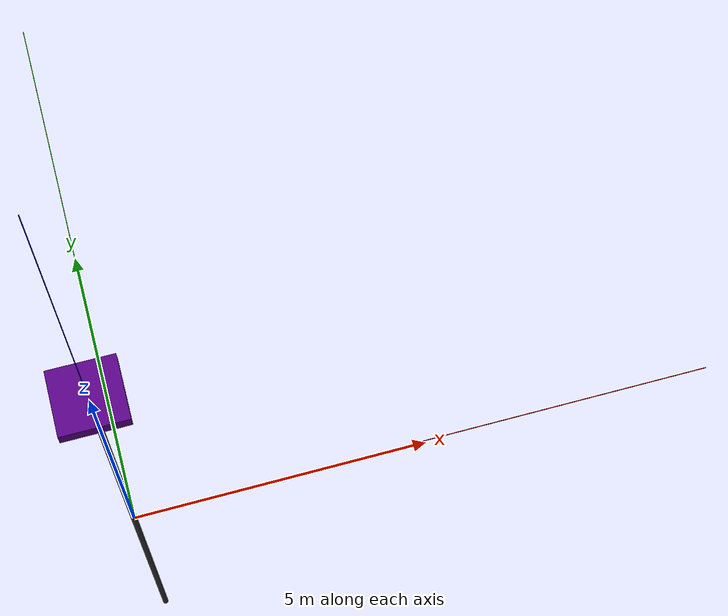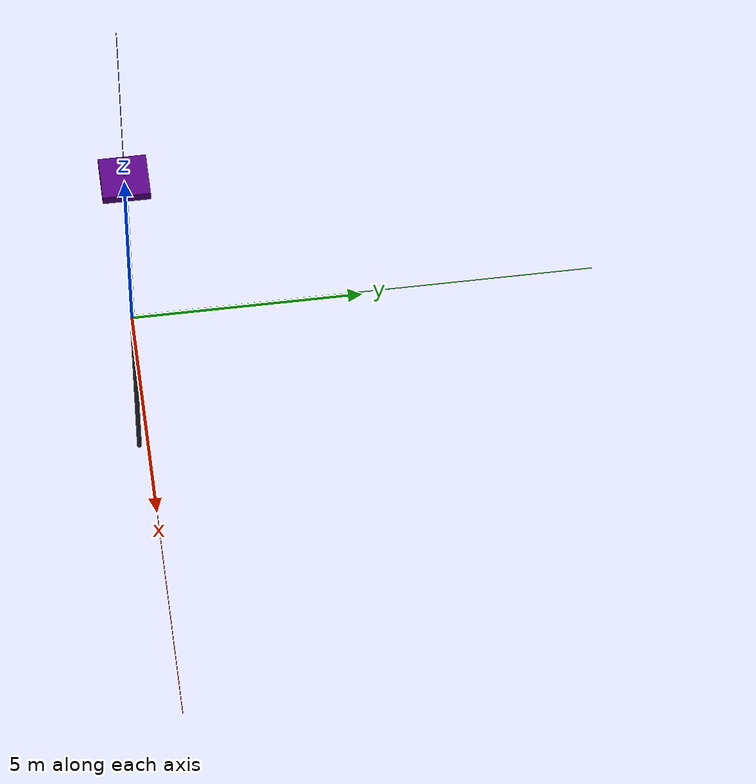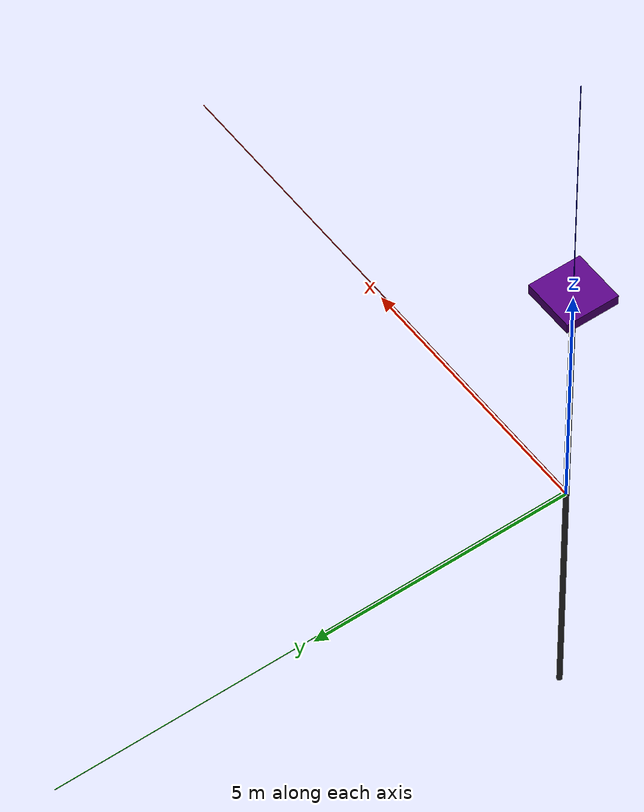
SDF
<sdf version="1.6">
 <world name="waves_sensor">
  <plugin filename="gz-sim-physics-system" name="gz::sim::systems::Physics"/>
  <plugin filename="gz-sim-sensors-system" name="gz::sim::systems::Sensors">
   <render_engine>ogre2</render_engine>
   <background_color>0.8 0.8 0.8</background_color>
  </plugin>
  <plugin filename="gz-sim-scene-broadcaster-system" name="gz::sim::systems::SceneBroadcaster"/>
  <plugin filename="gz-sim-user-commands-system" name="gz::sim::systems::UserCommands"/>
  <plugin filename="gz-sim-imu-system" name="gz::sim::systems::Imu"/>
  <scene><ambient>1.0 1.0 1.0</ambient><background>0.8 0.8 0.8</background></scene>
  <light type="directional" name="sun">
   <pose>0 0 10 0 0 0</pose>
   <diffuse>0.8 0.8 0.8 1</diffuse>
   <specular>0.6 0.6 0.6 1</specular>
   <direction>-0.5 0.1 -0.9</direction>
  </light>
  <model name="axes">
   <static>1</static>
   <link name="link">
    <visual name="r">
     <cast_shadows>0</cast_shadows>
     <pose>5 0 0.1 0 0 0</pose>
     <geometry><box><size>10 0.01 0.01</size></box></geometry>
     <material>
      <ambient>1 0 0 1</ambient>
      <diffuse>1 0 0 1</diffuse>
      <emissive>1 0 0 1</emissive>
      <specular>0.5 0.5 0.5 1</specular>
     </material>
    </visual>
    <visual name="g">
     <cast_shadows>0</cast_shadows>
     <pose>0 5 0.1 0 0 0</pose>
     <geometry><box><size>0.01 10 0.01</size></box></geometry>
     <material>
      <ambient>0 1 0 1</ambient>
      <diffuse>0 1 0 1</diffuse>
      <emissive>0 1 0 1</emissive>
      <specular>0.5 0.5 0.5 1</specular>
     </material>
    </visual>
    <visual name="b">
     <cast_shadows>0</cast_shadows>
     <pose>0 0 5.1 0 0 0</pose>
     <geometry><box><size>0.01 0.01 10</size></box></geometry>
     <material>
      <ambient>0 0 1 1</ambient>
      <diffuse>0 0 1 1</diffuse>
      <emissive>0 0 1 1</emissive>
      <specular>0.5 0.5 0.5 1</specular>
     </material>
    </visual>
   </link>
  </model>
  <model name="wave_sensor">
   <static>1</static>
   <plugin filename="gz-waves1-hydrodynamics-system" name="gz::sim::systems::Hydrodynamics">
    <enable>wave_sensor::sensor_link</enable>
    <hydrodynamics>
     <damping_on>0</damping_on>
     <viscous_drag_on>0</viscous_drag_on>
     <pressure_drag_on>0</pressure_drag_on>
    </hydrodynamics>
   </plugin>
   <link name="base_link">
    <visual name="visual">
     <geometry><cylinder><radius>0.05</radius><length>10</length></cylinder></geometry>
     <material>
      <ambient>0.175 0.175 0.175 1</ambient>
      <diffuse>0.175 0.175 0.175 1</diffuse>
      <specular>0.5 0.5 0.5 1</specular>
     </material>
    </visual>
    <collision name="collision">
     <geometry><cylinder><radius>0.05</radius><length>10</length></cylinder></geometry>
    </collision>
   </link>
   <link name="sensor_link">
    <pose>0 0 5.1 0 0 0</pose>
    <visual name="visual">
     <geometry><box><size>1 1 0.2</size></box></geometry>
     <material>
      <ambient>0.33 0.0 0.5</ambient>
      <diffuse>0.33 0.0 0.5</diffuse>
      <specular>0.5 0.5 0.5 1</specular>
     </material>
    </visual>
    <collision name="collision"><geometry><box><size>1 1 0.2</size></box></geometry></collision>
   </link>
   <joint name="sensor_joint" type="revolute">
    <parent>base_link</parent>
    <child>sensor_link</child>
    <axis>
     <xyz>0 0 1</xyz>
     <limit><lower>0</lower><upper>0</upper></limit>
     <dynamics><damping>1</damping></dynamics>
    </axis>
   </joint>
  </model>
 </world>
</sdf>
